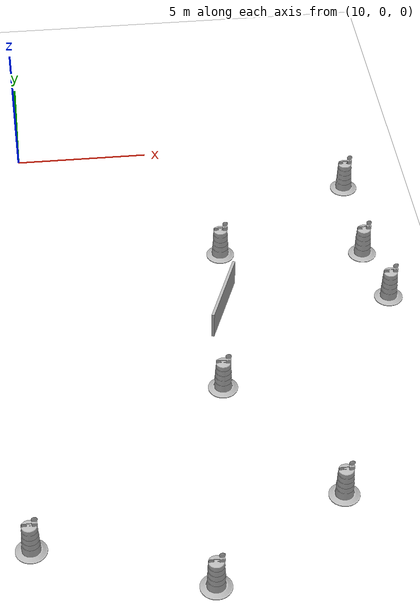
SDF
<sdf version="1.7">
 <world name="default">
  <model name="igvc_basic_ground">
   <static>1</static>
   <link name="link">
    <collision name="collision">
     <geometry><plane><normal>0 0 1</normal><size>50 50</size></plane></geometry>
     <surface><friction><ode><mu>100</mu><mu2>50</mu2></ode></friction></surface>
    </collision>
    <visual name="visual">
     <cast_shadows>false</cast_shadows>
     <geometry><plane><normal>0 0 1</normal><size>50 50</size></plane></geometry>
     <material>
      <ambient>1 1 1 1</ambient>
      <diffuse>1 1 1 1</diffuse>
      <specular>0 0 0 1</specular>
      <pbr>
       <metal><metalness>0.0</metalness><roughness>0.9</roughness><albedo_map>IGVC_pavement.png</albedo_map></metal>
      </pbr>
     </material>
    </visual>
    <velocity_decay><linear>0</linear><angular>0</angular></velocity_decay>
   </link>
  </model>
  <model name="Construction Barrel_11">
   <link name="link">
    <inertial>
     <pose>0 0 0.4 0 -0 0</pose>
     <mass>500</mass>
     <inertia><ixx>51.2096</ixx><iyy>51.2096</iyy><izz>25</izz><ixy>0</ixy><ixz>0</ixz><iyz>0</iyz></inertia>
    </inertial>
    <collision name="collision">
     <geometry><mesh><uri>model://construction_barrel/meshes/construction_barrel.dae</uri></mesh></geometry>
    </collision>
    <visual name="visual">
     <geometry><mesh><uri>model://construction_barrel/meshes/construction_barrel.dae</uri></mesh></geometry>
    </visual>
    <velocity_decay><linear>0</linear><angular>0</angular></velocity_decay>
   </link>
   <pose>9.74999 -20 -1e-06 -1e-06 0 0.038466</pose>
   <static>0</static>
  </model>
  <model name="Construction Barrel_12">
   <link name="link">
    <inertial>
     <pose>0 0 0.4 0 -0 0</pose>
     <mass>500</mass>
     <inertia><ixx>51.2096</ixx><iyy>51.2096</iyy><izz>25</izz><ixy>0</ixy><ixz>0</ixz><iyz>0</iyz></inertia>
    </inertial>
    <collision name="collision">
     <geometry><mesh><uri>model://construction_barrel/meshes/construction_barrel.dae</uri></mesh></geometry>
    </collision>
    <visual name="visual">
     <geometry><mesh><uri>model://construction_barrel/meshes/construction_barrel.dae</uri></mesh></geometry>
    </visual>
    <velocity_decay><linear>0</linear><angular>0</angular></velocity_decay>
   </link>
   <pose>15.25 -22 -1e-06 0 5e-06 -0.002209</pose>
   <static>0</static>
  </model>
  <model name="Construction Barrel_13">
   <link name="link">
    <inertial>
     <pose>0 0 0.4 0 -0 0</pose>
     <mass>500</mass>
     <inertia><ixx>51.2096</ixx><iyy>51.2096</iyy><izz>25</izz><ixy>0</ixy><ixz>0</ixz><iyz>0</iyz></inertia>
    </inertial>
    <collision name="collision">
     <geometry><mesh><uri>model://construction_barrel/meshes/construction_barrel.dae</uri></mesh></geometry>
    </collision>
    <visual name="visual">
     <geometry><mesh><uri>model://construction_barrel/meshes/construction_barrel.dae</uri></mesh></geometry>
    </visual>
    <velocity_decay><linear>0</linear><angular>0</angular></velocity_decay>
   </link>
   <pose>19.75 -18.75 -1e-06 0 5e-06 -0.002135</pose>
   <static>0</static>
  </model>
  <model name="Construction Barrel_14">
   <link name="link">
    <inertial>
     <pose>0 0 0.4 0 -0 0</pose>
     <mass>500</mass>
     <inertia><ixx>51.2096</ixx><iyy>51.2096</iyy><izz>25</izz><ixy>0</ixy><ixz>0</ixz><iyz>0</iyz></inertia>
    </inertial>
    <collision name="collision">
     <geometry><mesh><uri>model://construction_barrel/meshes/construction_barrel.dae</uri></mesh></geometry>
    </collision>
    <visual name="visual">
     <geometry><mesh><uri>model://construction_barrel/meshes/construction_barrel.dae</uri></mesh></geometry>
    </visual>
    <velocity_decay><linear>0</linear><angular>0</angular></velocity_decay>
   </link>
   <pose>16.4999 -13.5004 0 0 0 -0.046903</pose>
   <static>0</static>
  </model>
  <model name="Construction Barrel_15">
   <link name="link">
    <inertial>
     <pose>0 0 0.4 0 -0 0</pose>
     <mass>500</mass>
     <inertia><ixx>51.2096</ixx><iyy>51.2096</iyy><izz>25</izz><ixy>0</ixy><ixz>0</ixz><iyz>0</iyz></inertia>
    </inertial>
    <collision name="collision">
     <geometry><mesh><uri>model://construction_barrel/meshes/construction_barrel.dae</uri></mesh></geometry>
    </collision>
    <visual name="visual">
     <geometry><mesh><uri>model://construction_barrel/meshes/construction_barrel.dae</uri></mesh></geometry>
    </visual>
    <velocity_decay><linear>0</linear><angular>0</angular></velocity_decay>
   </link>
   <pose>23 -9.50003 0 0 0 -4.5e-05</pose>
   <static>0</static>
  </model>
  <model name="Construction Barrel_16">
   <link name="link">
    <inertial>
     <pose>0 0 0.4 0 -0 0</pose>
     <mass>500</mass>
     <inertia><ixx>51.2096</ixx><iyy>51.2096</iyy><izz>25</izz><ixy>0</ixy><ixz>0</ixz><iyz>0</iyz></inertia>
    </inertial>
    <collision name="collision">
     <geometry><mesh><uri>model://construction_barrel/meshes/construction_barrel.dae</uri></mesh></geometry>
    </collision>
    <visual name="visual">
     <geometry><mesh><uri>model://construction_barrel/meshes/construction_barrel.dae</uri></mesh></geometry>
    </visual>
    <velocity_decay><linear>0</linear><angular>0</angular></velocity_decay>
   </link>
   <pose>17.25 -6.50003 -1e-06 0 5e-06 -0.001863</pose>
   <static>0</static>
  </model>
  <model name="Construction Barrel_17">
   <link name="link">
    <inertial>
     <pose>0 0 0.4 0 -0 0</pose>
     <mass>500</mass>
     <inertia><ixx>51.2096</ixx><iyy>51.2096</iyy><izz>25</izz><ixy>0</ixy><ixz>0</ixz><iyz>0</iyz></inertia>
    </inertial>
    <collision name="collision">
     <geometry><mesh><uri>model://construction_barrel/meshes/construction_barrel.dae</uri></mesh></geometry>
    </collision>
    <visual name="visual">
     <geometry><mesh><uri>model://construction_barrel/meshes/construction_barrel.dae</uri></mesh></geometry>
    </visual>
    <velocity_decay><linear>0</linear><angular>0</angular></velocity_decay>
   </link>
   <pose>22.5 -7.00003 1e-06 3e-06 2e-06 -0.000933</pose>
   <static>0</static>
  </model>
  <model name="Construction Barrel_18">
   <link name="link">
    <inertial>
     <pose>0 0 0.4 0 -0 0</pose>
     <mass>500</mass>
     <inertia><ixx>51.2096</ixx><iyy>51.2096</iyy><izz>25</izz><ixy>0</ixy><ixz>0</ixz><iyz>0</iyz></inertia>
    </inertial>
    <collision name="collision">
     <geometry><mesh><uri>model://construction_barrel/meshes/construction_barrel.dae</uri></mesh></geometry>
    </collision>
    <visual name="visual">
     <geometry><mesh><uri>model://construction_barrel/meshes/construction_barrel.dae</uri></mesh></geometry>
    </visual>
    <velocity_decay><linear>0</linear><angular>0</angular></velocity_decay>
   </link>
   <pose>22.5 -3.00003 -1e-06 0 5e-06 -0.001769</pose>
   <static>0</static>
  </model>
  <model name="barricade_2">
   <static>1</static>
   <pose>17 -9.5 0.5 0 -0 1.2</pose>
   <link name="link">
    <collision name="collision"><geometry><box><size>3 0.1 1</size></box></geometry></collision>
    <visual name="visual"><geometry><box><size>3 0.1 1</size></box></geometry></visual>
   </link>
  </model>
 </world>
</sdf>
